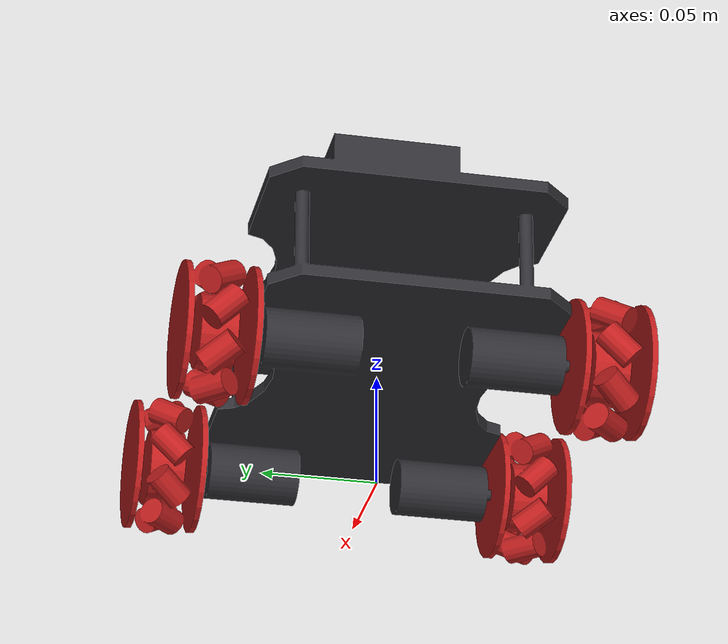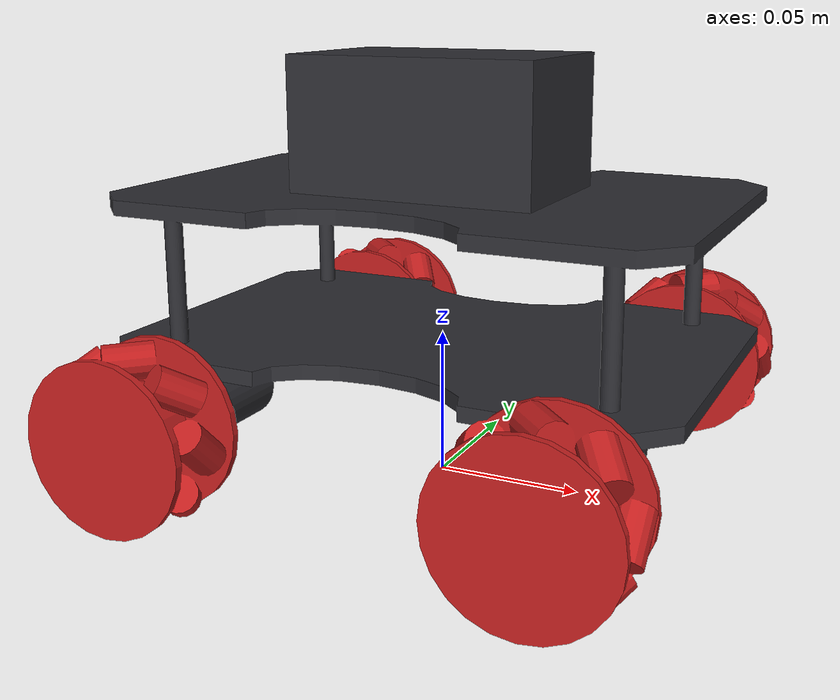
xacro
<?xml version="1.0"?>
<robot xmlns:xacro="http://www.ros.org/wiki/xacro" name="smartcar">

  <!-- ===== 几何常量（单位 m）===== -->
  <xacro:property name="wheel_radius" value="0.03"/>
  <xacro:property name="wheel_width" value="0.03062"/>
  <xacro:property name="wheelbase" value="0.135"/>
  <xacro:property name="track_width" value="0.16462"/>
  <!-- chassis.stl 导出时的几何中心高度（地面为 0） -->
  <xacro:property name="base_link_z" value="0.052234"/>
  <xacro:property name="wheel_z" value="${wheel_radius - base_link_z}"/>

  <!-- 包络碰撞（相对 base_link；覆盖板+Pi） -->
  <xacro:property name="base_length" value="0.220"/>
  <xacro:property name="base_width" value="0.192"/>
  <xacro:property name="base_height" value="0.145"/>
  <xacro:property name="base_mass" value="2.0"/>
  <xacro:property name="wheel_mass" value="0.15"/>

  <link name="base_footprint"/>

  <link name="base_link">
    <visual>
      <origin xyz="0 0 0" rpy="0 0 0"/>
      <geometry>
        <mesh filename="package://smartcar_description/meshes/chassis.stl"/>
      </geometry>
      <material name="chassis_gray">
        <color rgba="0.18 0.18 0.20 1.0"/>
      </material>
    </visual>
    <collision>
      <!-- 碰撞盒中心与 visual 网格中心大致重合 -->
      <origin xyz="0 0 0" rpy="0 0 0"/>
      <geometry>
        <box size="${base_length} ${base_width} ${base_height}"/>
      </geometry>
    </collision>
    <inertial>
      <origin xyz="0 0 0" rpy="0 0 0"/>
      <mass value="${base_mass}"/>
      <inertia
        ixx="${base_mass/12.0*(base_width*base_width + base_height*base_height)}"
        iyy="${base_mass/12.0*(base_length*base_length + base_height*base_height)}"
        izz="${base_mass/12.0*(base_length*base_length + base_width*base_width)}"
        ixy="0" ixz="0" iyz="0"/>
    </inertial>
  </link>

  <joint name="base_footprint_joint" type="fixed">
    <parent link="base_footprint"/>
    <child link="base_link"/>
    <!-- base_link 抬到网格几何中心高度，轮心世界 z 仍为 wheel_radius -->
    <origin xyz="0 0 ${base_link_z}" rpy="0 0 0"/>
  </joint>

  <xacro:macro name="wheel" params="prefix x_sign y_sign mesh_file">
    <link name="${prefix}_wheel_link">
      <visual>
        <origin xyz="0 0 0" rpy="0 0 0"/>
        <geometry>
          <mesh filename="package://smartcar_description/meshes/${mesh_file}"/>
        </geometry>
        <material name="wheel_red">
          <color rgba="0.75 0.12 0.12 1.0"/>
        </material>
      </visual>
      <collision>
        <origin xyz="0 0 0" rpy="${pi/2} 0 0"/>
        <geometry>
          <cylinder radius="${wheel_radius}" length="${wheel_width}"/>
        </geometry>
      </collision>
      <inertial>
        <!-- 轮子惯量原点位于轮心（圆柱几何中心） -->
        <origin xyz="0 0 0" rpy="0 0 0"/>
        <mass value="${wheel_mass}"/>
        <inertia
          ixx="${wheel_mass/12.0*(3*wheel_radius*wheel_radius + wheel_width*wheel_width)}"
          iyy="${wheel_mass/12.0*(3*wheel_radius*wheel_radius + wheel_width*wheel_width)}"
          izz="${wheel_mass*wheel_radius*wheel_radius/2.0}"
          ixy="0" ixz="0" iyz="0"/>
      </inertial>
    </link>

    <joint name="${prefix}_wheel_joint" type="continuous">
      <parent link="base_link"/>
      <child link="${prefix}_wheel_link"/>
      <origin
        xyz="${x_sign*wheelbase/2.0} ${y_sign*track_width/2.0} ${wheel_z}"
        rpy="0 0 0"/>
      <axis xyz="0 1 0"/>
    </joint>
  </xacro:macro>

  <xacro:wheel prefix="front_left"  x_sign="1"  y_sign="1"  mesh_file="wheel_left.stl"/>
  <xacro:wheel prefix="front_right" x_sign="1"  y_sign="-1" mesh_file="wheel_right.stl"/>
  <xacro:wheel prefix="rear_left"   x_sign="-1" y_sign="1"  mesh_file="wheel_right.stl"/>
  <xacro:wheel prefix="rear_right"  x_sign="-1" y_sign="-1" mesh_file="wheel_left.stl"/>

</robot>
